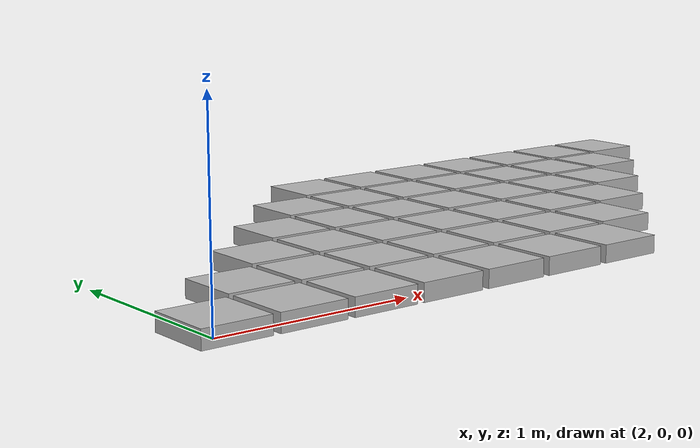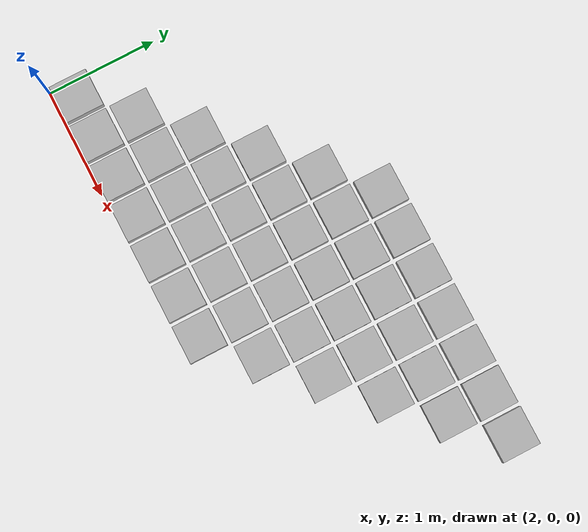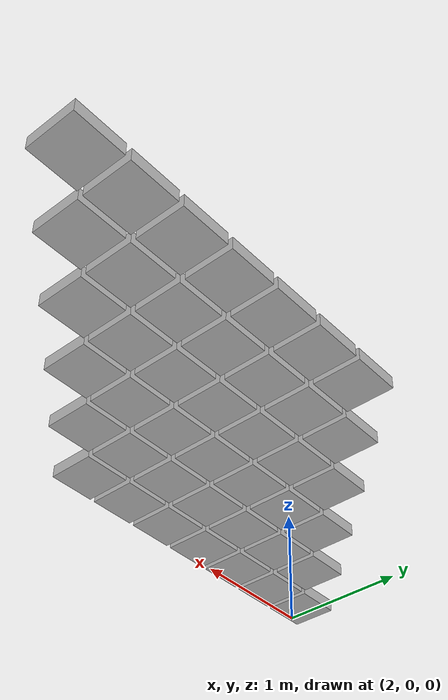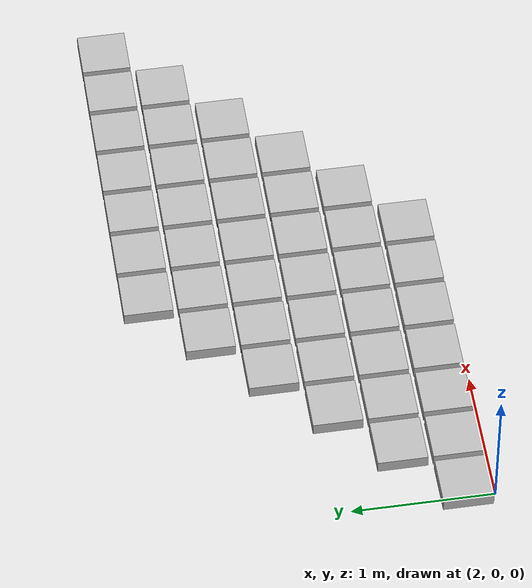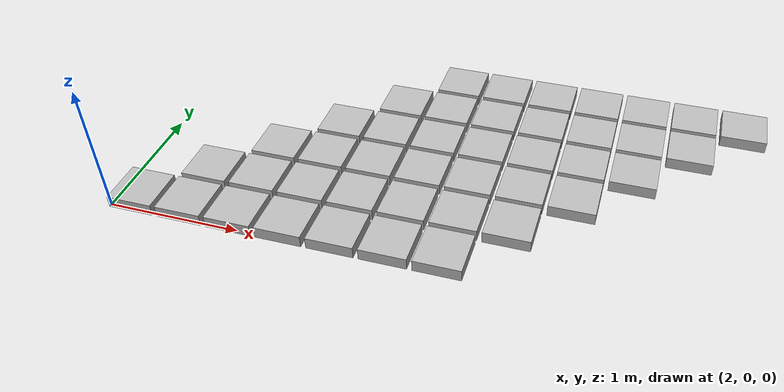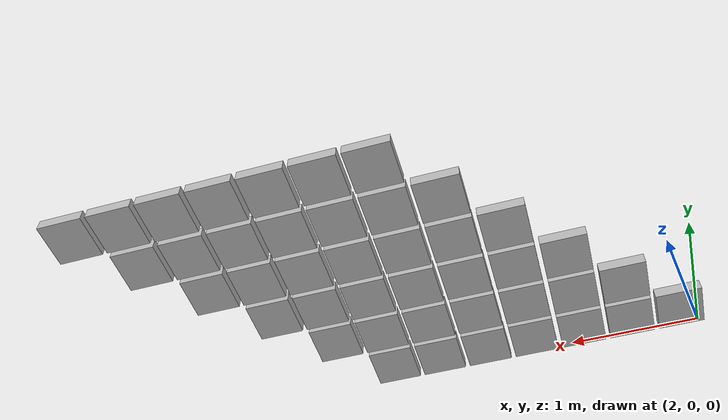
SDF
<?xml version="1.0" ?>
<sdf version="1.4">

  <model name="block_cover">
    <pose> 0 0 0 0 0 0 </pose>

          <include>
            <name>"block_0_0"</name>
            <pose> 2.1304445579999998 0.193676778 0 0 0 0 </pose>
            <uri>model://cinder_block_narrow</uri>
          </include>

          <include>
            <name>"block_0_1"</name>
            <pose> 2.5177981139999996 0.581030334 0 0 0 0 </pose>
            <uri>model://cinder_block_narrow</uri>
          </include>

          <include>
            <name>"block_0_2"</name>
            <pose> 2.9051516699999995 0.9683838899999999 0 0 0 0 </pose>
            <uri>model://cinder_block_narrow</uri>
          </include>

          <include>
            <name>"block_0_3"</name>
            <pose> 3.292505226 1.355737446 0 0 0 0 </pose>
            <uri>model://cinder_block_narrow</uri>
          </include>

          <include>
            <name>"block_0_4"</name>
            <pose> 3.6798587819999997 1.743091002 0 0 0 0 </pose>
            <uri>model://cinder_block_narrow</uri>
          </include>

          <include>
            <name>"block_0_5"</name>
            <pose> 4.067212337999999 2.1304445579999998 0 0 0 0 </pose>
            <uri>model://cinder_block_narrow</uri>
          </include>

          <include>
            <name>"block_1_0"</name>
            <pose> 2.5177981139999996 0.193676778 0 0 0 0 </pose>
            <uri>model://cinder_block_narrow</uri>
          </include>

          <include>
            <name>"block_1_1"</name>
            <pose> 2.9051516699999995 0.581030334 0 0 0 0 </pose>
            <uri>model://cinder_block_narrow</uri>
          </include>

          <include>
            <name>"block_1_2"</name>
            <pose> 3.2925052259999994 0.9683838899999999 0 0 0 0 </pose>
            <uri>model://cinder_block_narrow</uri>
          </include>

          <include>
            <name>"block_1_3"</name>
            <pose> 3.6798587819999997 1.355737446 0 0 0 0 </pose>
            <uri>model://cinder_block_narrow</uri>
          </include>

          <include>
            <name>"block_1_4"</name>
            <pose> 4.067212337999999 1.743091002 0 0 0 0 </pose>
            <uri>model://cinder_block_narrow</uri>
          </include>

          <include>
            <name>"block_1_5"</name>
            <pose> 4.454565894 2.1304445579999998 0 0 0 0 </pose>
            <uri>model://cinder_block_narrow</uri>
          </include>

          <include>
            <name>"block_2_0"</name>
            <pose> 2.9051516699999995 0.193676778 0 0 0 0 </pose>
            <uri>model://cinder_block_narrow</uri>
          </include>

          <include>
            <name>"block_2_1"</name>
            <pose> 3.2925052259999994 0.581030334 0 0 0 0 </pose>
            <uri>model://cinder_block_narrow</uri>
          </include>

          <include>
            <name>"block_2_2"</name>
            <pose> 3.6798587819999993 0.9683838899999999 0 0 0 0 </pose>
            <uri>model://cinder_block_narrow</uri>
          </include>

          <include>
            <name>"block_2_3"</name>
            <pose> 4.067212337999999 1.355737446 0 0 0 0 </pose>
            <uri>model://cinder_block_narrow</uri>
          </include>

          <include>
            <name>"block_2_4"</name>
            <pose> 4.454565894 1.743091002 0 0 0 0 </pose>
            <uri>model://cinder_block_narrow</uri>
          </include>

          <include>
            <name>"block_2_5"</name>
            <pose> 4.841919449999999 2.1304445579999998 0 0 0 0 </pose>
            <uri>model://cinder_block_narrow</uri>
          </include>

          <include>
            <name>"block_3_0"</name>
            <pose> 3.292505226 0.193676778 0 0 0 0 </pose>
            <uri>model://cinder_block_narrow</uri>
          </include>

          <include>
            <name>"block_3_1"</name>
            <pose> 3.6798587819999997 0.581030334 0 0 0 0 </pose>
            <uri>model://cinder_block_narrow</uri>
          </include>

          <include>
            <name>"block_3_2"</name>
            <pose> 4.067212338 0.9683838899999999 0 0 0 0 </pose>
            <uri>model://cinder_block_narrow</uri>
          </include>

          <include>
            <name>"block_3_3"</name>
            <pose> 4.454565894 1.355737446 0 0 0 0 </pose>
            <uri>model://cinder_block_narrow</uri>
          </include>

          <include>
            <name>"block_3_4"</name>
            <pose> 4.84191945 1.743091002 0 0 0 0 </pose>
            <uri>model://cinder_block_narrow</uri>
          </include>

          <include>
            <name>"block_3_5"</name>
            <pose> 5.229273006 2.1304445579999998 0 0 0 0 </pose>
            <uri>model://cinder_block_narrow</uri>
          </include>

          <include>
            <name>"block_4_0"</name>
            <pose> 3.6798587819999997 0.193676778 0 0 0 0 </pose>
            <uri>model://cinder_block_narrow</uri>
          </include>

          <include>
            <name>"block_4_1"</name>
            <pose> 4.067212338 0.581030334 0 0 0 0 </pose>
            <uri>model://cinder_block_narrow</uri>
          </include>

          <include>
            <name>"block_4_2"</name>
            <pose> 4.454565894 0.9683838899999999 0 0 0 0 </pose>
            <uri>model://cinder_block_narrow</uri>
          </include>

          <include>
            <name>"block_4_3"</name>
            <pose> 4.84191945 1.355737446 0 0 0 0 </pose>
            <uri>model://cinder_block_narrow</uri>
          </include>

          <include>
            <name>"block_4_4"</name>
            <pose> 5.229273006 1.743091002 0 0 0 0 </pose>
            <uri>model://cinder_block_narrow</uri>
          </include>

          <include>
            <name>"block_4_5"</name>
            <pose> 5.6166265619999995 2.1304445579999998 0 0 0 0 </pose>
            <uri>model://cinder_block_narrow</uri>
          </include>

          <include>
            <name>"block_5_0"</name>
            <pose> 4.067212337999999 0.193676778 0 0 0 0 </pose>
            <uri>model://cinder_block_narrow</uri>
          </include>

          <include>
            <name>"block_5_1"</name>
            <pose> 4.454565893999999 0.581030334 0 0 0 0 </pose>
            <uri>model://cinder_block_narrow</uri>
          </include>

          <include>
            <name>"block_5_2"</name>
            <pose> 4.841919449999999 0.9683838899999999 0 0 0 0 </pose>
            <uri>model://cinder_block_narrow</uri>
          </include>

          <include>
            <name>"block_5_3"</name>
            <pose> 5.229273006 1.355737446 0 0 0 0 </pose>
            <uri>model://cinder_block_narrow</uri>
          </include>

          <include>
            <name>"block_5_4"</name>
            <pose> 5.616626561999999 1.743091002 0 0 0 0 </pose>
            <uri>model://cinder_block_narrow</uri>
          </include>

          <include>
            <name>"block_5_5"</name>
            <pose> 6.003980117999999 2.1304445579999998 0 0 0 0 </pose>
            <uri>model://cinder_block_narrow</uri>
          </include>

          <include>
            <name>"block_6_0"</name>
            <pose> 4.454565894 0.193676778 0 0 0 0 </pose>
            <uri>model://cinder_block_narrow</uri>
          </include>

          <include>
            <name>"block_6_1"</name>
            <pose> 4.84191945 0.581030334 0 0 0 0 </pose>
            <uri>model://cinder_block_narrow</uri>
          </include>

          <include>
            <name>"block_6_2"</name>
            <pose> 5.229273006 0.9683838899999999 0 0 0 0 </pose>
            <uri>model://cinder_block_narrow</uri>
          </include>

          <include>
            <name>"block_6_3"</name>
            <pose> 5.616626562 1.355737446 0 0 0 0 </pose>
            <uri>model://cinder_block_narrow</uri>
          </include>

          <include>
            <name>"block_6_4"</name>
            <pose> 6.003980117999999 1.743091002 0 0 0 0 </pose>
            <uri>model://cinder_block_narrow</uri>
          </include>

          <include>
            <name>"block_6_5"</name>
            <pose> 6.391333674 2.1304445579999998 0 0 0 0 </pose>
            <uri>model://cinder_block_narrow</uri>
          </include>

  </model>

</sdf>

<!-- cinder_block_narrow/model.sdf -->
<sdf version="1.5">
  <model name="cinder_block_wide">
    <link name="link">
      <inertial>
        <pose>0 0 0.0714375 0 0 0</pose>
        <mass>5</mass>
        <!-- approximate as uniform box 0.387 x 0.387 x 0.092 m -->
        <inertia>
          <ixx>0.06814656666666667</ixx>
          <ixy>0.0000</ixy>
          <iyy>0.06814656666666667</iyy>
          <ixz>0.0000</ixz>
          <iyz>0.0000</iyz>
          <izz>0.1248075</izz>
        </inertia>
      </inertial>
      <visual name="visual">
        <geometry>

          <box>
            <size>0.35 0.35 0.092075</size>
          </box>
        </geometry>
      </visual>

      <collision name="block_collision">
       <pose>0 0 0 0 0 0</pose>
        <geometry>
          <box>
            <size>0.35 0.35 0.092075</size>
          </box>
        </geometry>
        <surface>
          <contact>
            <ode>
              <max_vel>0.1</max_vel>
              <min_depth>0.001</min_depth>
            </ode>
          </contact>
          <friction>
            <ode>
              <mu>1.0</mu>
              <mu2>1.0</mu2>
            </ode>
          </friction>
        </surface>

      </collision>

    </link>
  </model>
</sdf>
